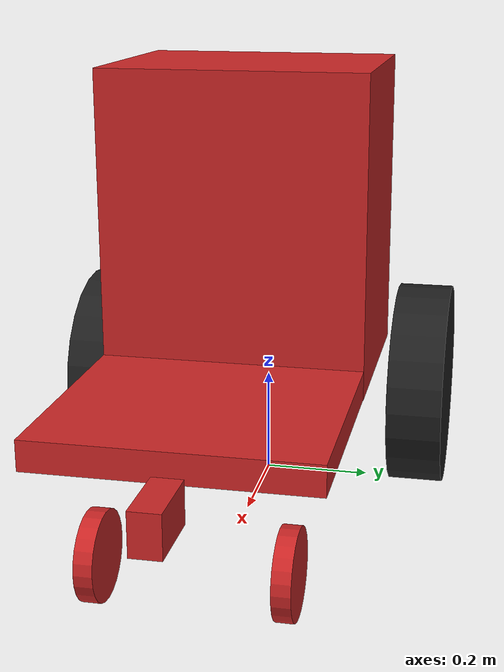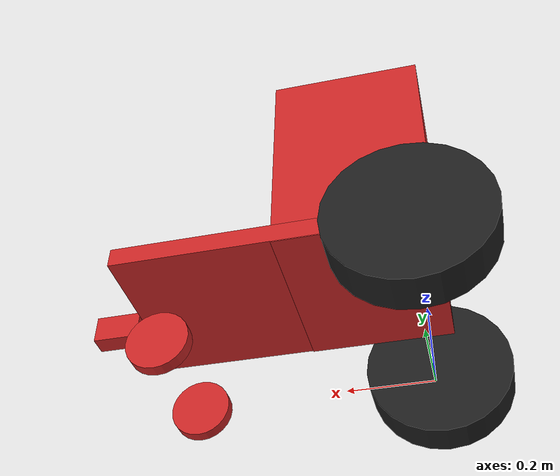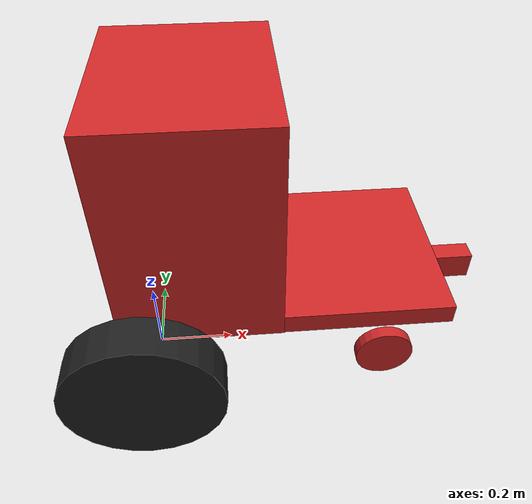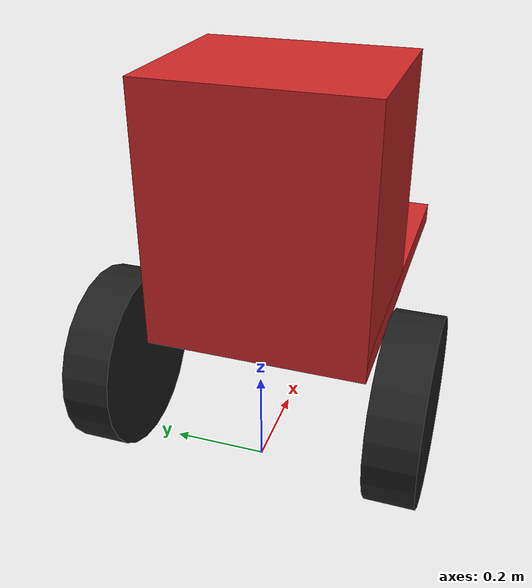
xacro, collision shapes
<?xml version="1.0"?>
<robot name="orne_large" xmlns:xacro="http://www.ros.org/wiki/xacro">

    <!--Constants for robot dimensions -->
    <xacro:property name="PI" value="3.1415926535897931" />

    <!-- Import Rviz color -->
    <xacro:include filename="$(find orne_large_description)/urdf/materials.xacro" />

    <!-- import gazebo control -->
    <xacro:include filename="$(find orne_large_description)/urdf/common.gazebo.xacro" />

    <!-- import mobile base -->
    <xacro:include filename="$(find orne_large_description)/urdf/base/base.urdf.xacro" />

    <!-- import sensors -->
    <xacro:include filename="$(find orne_large_description)/urdf/sensors/imu/imu.urdf.xacro" />
    <xacro:include filename="$(find orne_large_description)/urdf/sensors/lrf/lrf.urdf.xacro" />

</robot>

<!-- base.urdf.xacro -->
<robot xmlns:xacro="http://www.ros.org/wiki/xacro">

    <!-- import gazebo -->
    <xacro:include filename="$(find orne_large_description)/urdf/base/base.gazebo.xacro" />

    <!-- import wheels -->
    <xacro:include filename="$(find orne_large_description)/urdf/wheel/wheel.urdf.xacro" />

    <!-- base link -->
    <link name="base_link">
        <inertial>
            <mass value="54.70291"/>
            <origin xyz ="0.1 0 0.2025" />
            <inertia ixx="4.01622" ixy="-0.0248" ixz="0.03847" iyy="3.829784" iyz="0.24264" izz="2.956"/>
        </inertial>
        <visual>
            <origin xyz="0.346 -0.0393 0.3265" rpy="${-PI/2} 0 ${PI/2}" />
            <geometry>
                <mesh filename="package://orne_large_description/meshes/STL/chassis_4_wheel.stl"/>
            </geometry>
            <material name="red" />
        </visual>
        <!-- trunk box -->
        <collision>
            <origin xyz="0.138 0.0 0.5525" rpy="0.0 0.0 0.0"/>
            <geometry>
                <box size="0.38 0.46 0.55"/>
            </geometry>
        </collision>
        <!-- working deck -->
        <collision>
            <origin xyz="0.338 0.0 0.305" rpy="0.0 0.0 0.0"/>
            <geometry>
                <box size="0.78 0.46 0.05"/>
            </geometry>
        </collision>
        <!-- front URG -->
        <collision>
            <origin xyz="0.7855 0.0 0.255" rpy="0.0 0.0 0.0"/>
            <geometry>
                <box size="0.115 0.05 0.07"/>
            </geometry>
        </collision>
        <collision>
            <origin xyz="0.6026 0.155 0.0892" rpy="${PI/2} 0 0" />
            <geometry>
                <cylinder length="0.031" radius="0.075" />
            </geometry>
        </collision>
        <collision>
            <origin xyz="0.6026 -0.155 0.0892" rpy="${PI/2} 0 0" />
            <geometry>
                <cylinder length="0.031" radius="0.075" />
            </geometry>
        </collision>
    </link>
</robot>

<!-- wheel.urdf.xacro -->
<robot name="manipulator" xmlns:xacro="http://www.ros.org/wiki/xacro">

    <!-- import gazebo -->
    <xacro:include filename="$(find orne_large_description)/urdf/wheel/wheel.gazebo.xacro" />

    <!-- import transmission -->
    <xacro:include filename="$(find orne_large_description)/urdf/wheel/wheel.transmission.xacro" />

    <!-- wheel joint -->
    <joint name="left_wheel_hinge" type="continuous">
        <origin xyz="-0.0002 0.305 0.2032" rpy="${-PI/2} 0 0" />
        <axis xyz="0 0 1" />
        <parent link="base_link"/>
        <child link="left_wheel_link"/>
        <limit effort="32.5" velocity="4.18" />
    </joint>

    <joint name="right_wheel_hinge" type="continuous">
        <origin xyz="-0.0002 -0.305 0.2032" rpy="${-PI/2} 0 0" />
        <axis xyz="0 0 1" />
        <parent link="base_link"/>
        <child link="right_wheel_link"/>
        <limit effort="32.5" velocity="4.18"/>
    </joint>

    <!-- wheel link -->
    <link name="left_wheel_link">
        <inertial>
            <mass value="9.376312"/>
            <origin xyz ="0 0 0" />
            <inertia ixx="0.11786" ixy="0.0" ixz="0.0" iyy="0.11786" iyz="0.0" izz="0.22194"/>
        </inertial>
        <visual>
            <origin xyz="-0.002 -0.07455 0.062" rpy="0 0 0" />
            <geometry>
                <mesh filename="package://orne_large_description/meshes/STL/tire.stl"/>
            </geometry>
            <material name="black" />
        </visual>
        <collision>
            <origin xyz="0 0 0" rpy="0 0 0" />
            <geometry>
                <cylinder length="0.1" radius="0.19" />
            </geometry>
        </collision>
    </link>

    <link name="right_wheel_link">
        <inertial>
            <mass value="9.376312"/>
            <origin xyz ="0 0 0" />
            <inertia ixx="0.11786" ixy="0.0" ixz="0.0" iyy="0.11786" iyz="0.0" izz="0.22194"/>
        </inertial>
        <visual>
            <origin xyz="0.002 -0.07455 -0.062" rpy="0 ${PI} 0" />
            <geometry>
                <mesh filename="package://orne_large_description/meshes/STL/tire.stl"/>
            </geometry>
            <material name="black" />
        </visual>
        <collision>
            <origin xyz="0 0 0" rpy="0 0 0" />
            <geometry>
                <cylinder length="0.1" radius="0.19" />
            </geometry>
        </collision>
    </link>

</robot>

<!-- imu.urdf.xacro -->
<robot xmlns:xacro="http://www.ros.org/wiki/xacro">

    <!-- import gazebo -->
    <xacro:include filename="$(find orne_large_description)/urdf/sensors/imu/imu.gazebo.xacro" />

    <!-- joint link -->
    <joint name="imu_joint" type="fixed">
        <parent link="base_link" />
        <child link="imu_link" />
        <origin xyz="0.15 0 0.5025" rpy="0 0 0"/>
    </joint>

    <!-- imu link -->
    <link name="imu_link" />

</robot>

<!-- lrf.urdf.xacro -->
<robot xmlns:xacro="http://www.ros.org/wiki/xacro">

    <!-- import gazebo -->
    <xacro:include filename="$(find orne_large_description)/urdf/sensors/lrf/lrf.gazebo.xacro" />

    <!-- joint link -->
    <joint name="lrf_front_joint" type="fixed">
        <parent link="base_link" />
        <child link="lrf_front_link" />
        <origin xyz="0.81 0 0.3025" rpy="${PI} 0 0"/>
    </joint>

    <joint name="lrf_back_joint" type="fixed">
        <parent link="base_link" />
        <child link="lrf_back_link" />
        <origin xyz="-0.15 0 0.3025" rpy="0 0 ${PI}"/>
    </joint>

    <!-- lrf link -->
    <link name="lrf_front_link" />
    <link name="lrf_back_link" />

</robot>
